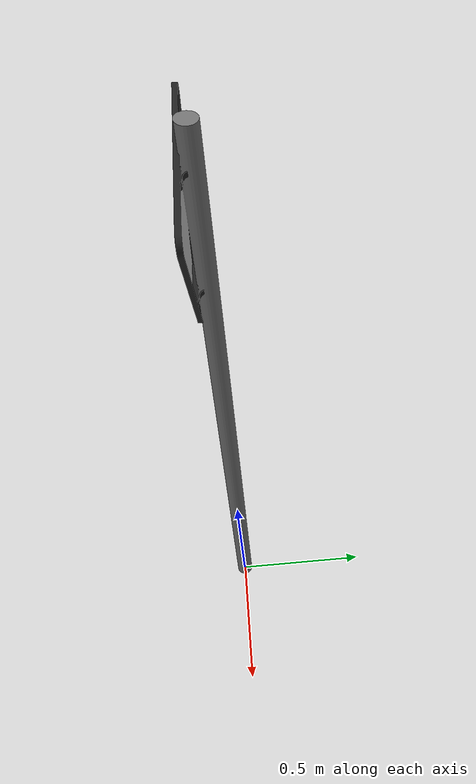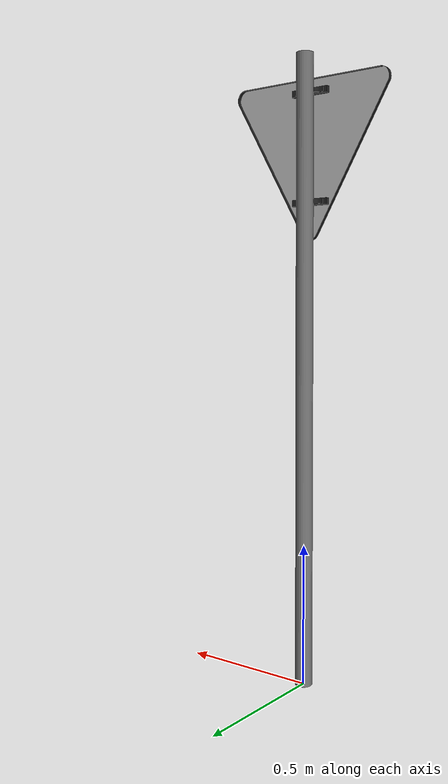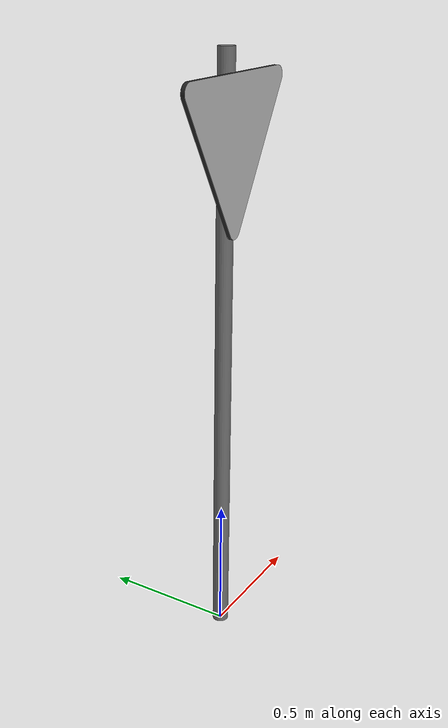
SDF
<?xml version="1.0" ?>
<sdf version="1.6">
  <model name="T_tortilla">
    <static>true</static>
    <link name="link">
      <visual name="visual">
        <geometry>
          <mesh>
            <scale>1 1 1</scale>
            <uri>model://T_tortilla/meshes/T_tortilla.dae</uri>
          </mesh>
        </geometry>
      </visual>
    </link>
  </model>
</sdf>
